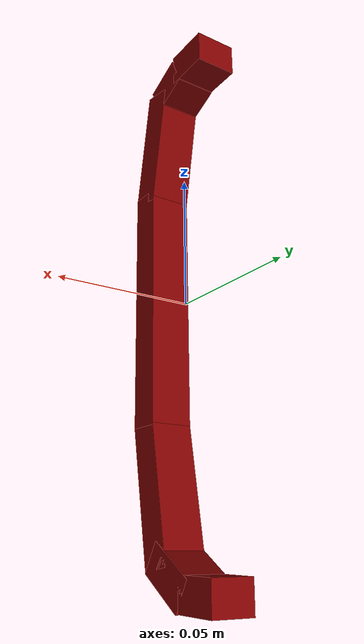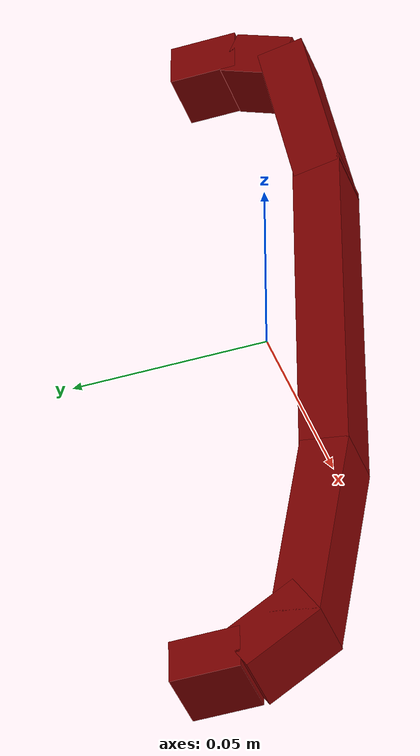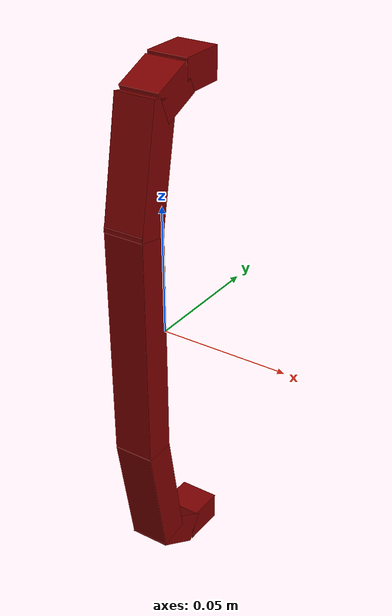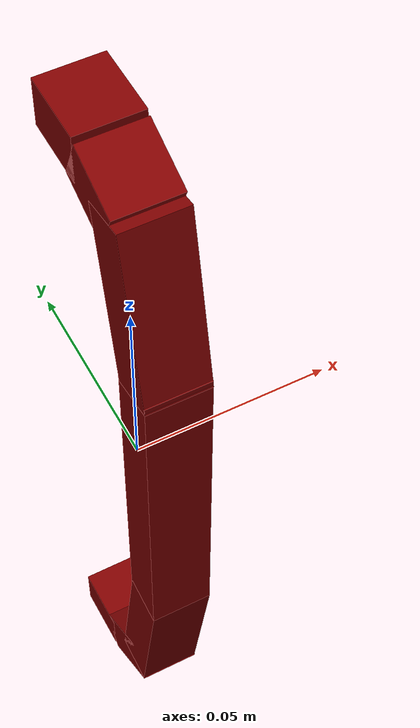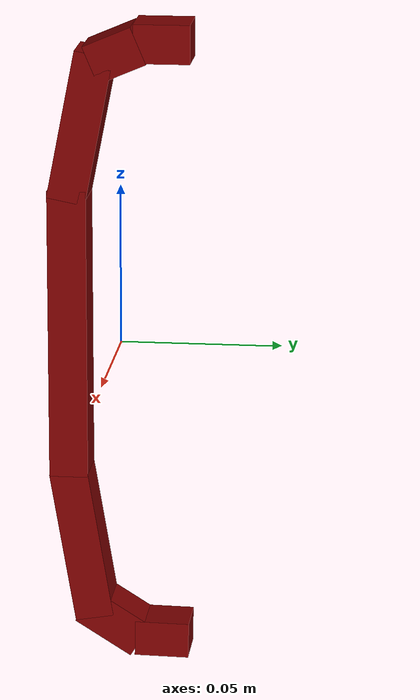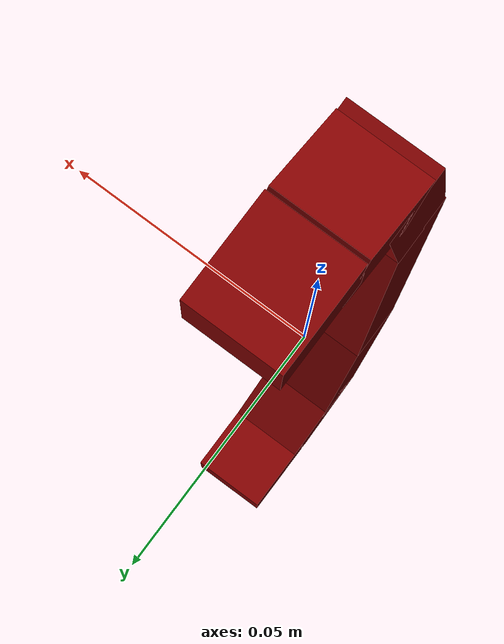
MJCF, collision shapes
<?xml version='1.0' encoding='UTF-8'?>
<mujoco model="model">
  <option timestep="0.002" gravity="0.0 0.0 -9.81"/>
  <compiler angle="radian"/>
  <asset>
    <mesh file="visuals/CabinetHandle043.obj" name="CabinetHandle043_vis"/>
    <texture file="visuals/T_BC001.png" name="tex" type="2d"/>
    <material name="mat" rgba="1 1 1 1.0" texture="tex" shininess="0.4472135901451111" specular="0.3103448502657381"/>
  </asset>
  <default>
    <default class="visual">
      <geom conaffinity="0" contype="0" group="1" type="mesh"/>
    </default>
    <default class="collision">
      <geom group="0" rgba="0.5 0 0 0.5" density="1.0" solref="0.004 1" solimp="0.998 0.998 0.001"/>
    </default>
    <default class="spawn">
      <geom group="0" rgba="1 1 1 0.5" contype="0" conaffinity="0"/>
      <site group="0" rgba="1 1 1 0.5"/>
    </default>
    <default class="region">
      <geom group="1" conaffinity="0" contype="0" rgba="0 1 0 0" mass="0"/>
    </default>
  </default>
  <worldbody>
    <body>
      <body name="object">
        <geom mesh="CabinetHandle043_vis" type="mesh" solimp="0.998 0.998 0.001" solref="0.001 1" friction="0.95 0.3 0.1" class="visual" material="mat"/>
        <geom type="box" pos="-5.561009874810452e-09 -0.015969404950737953 0.0034406338818371296" size="0.00786733627319336 0.006022721994668245 0.04577995836734772" quat="1.0 0.0 0.0 0.0" class="collision"/>
        <geom type="box" pos="-5.561009874810452e-09 -0.011693019419908524 0.06893876940011978" size="0.00786733627319336 0.0060227192007005215 0.023298071697354317" quat="0.9952884912490845 -0.09695761650800705 2.1528913997631894e-17 4.862542564086843e-24" class="collision"/>
        <geom type="box" pos="-5.561009874810452e-09 -0.012093618512153625 -0.06506653130054474" size="0.00786733627319336 0.0060227192007005215 0.024288201704621315" quat="0.9965286254882812 0.08325078338384628 -1.848539061488796e-17 7.949872778970487e-24" class="collision"/>
        <geom type="box" pos="-5.561009874810452e-09 -0.0022322162985801697 -0.09069106727838516" size="0.00786733627319336 0.006022718269377947 0.010354273021221161" quat="0.8756933212280273 0.48286768794059753 -1.0721818485216799e-16 -1.5737625175587194e-23" class="collision"/>
        <geom type="box" pos="-5.561009874810452e-09 0.013264409266412258 -0.09562163054943085" size="0.00786733627319336 0.005578158888965845 0.008473028428852558" quat="0.7135644555091858 0.7005895972251892 -1.5556216680023355e-16 -2.6457686364019847e-23" class="collision"/>
        <geom type="box" pos="-5.561009874810452e-09 -0.0009950604289770126 0.09155715256929398" size="0.00786733627319336 0.006205067038536072 0.007987170480191708" quat="0.5521039366722107 0.8337752819061279 -1.8513534277177218e-16 -4.372355836065632e-24" class="collision"/>
        <geom type="box" pos="-5.561009874810452e-09 0.013479734770953655 0.09532629698514938" size="0.00786733627319336 0.008692348375916481 0.006018991116434336" quat="1.0 0.0 0.0 0.0" class="collision"/>
        <geom class="region" name="reg_main" type="box" pos="-5.122274160385132e-09 3.632158041000366e-07 2.2351741790771484e-08" size="0.00886733627319336 0.02323764918744564 0.10236543214321137"/>
      </body>
    </body>
  </worldbody>
  <actuator/>
</mujoco>
